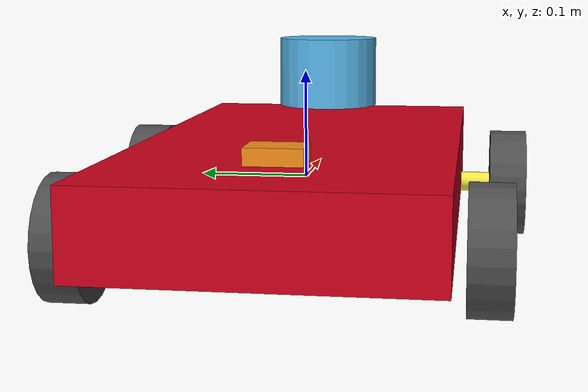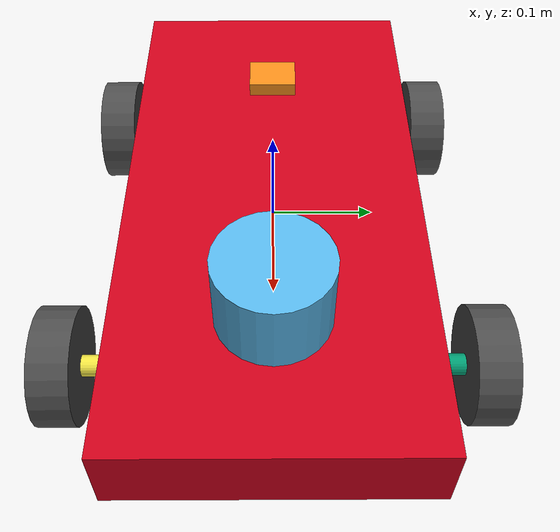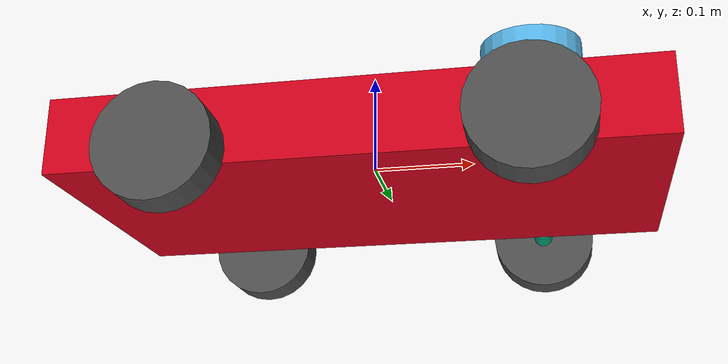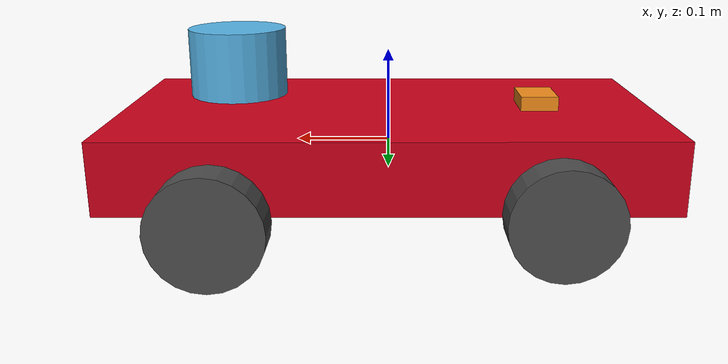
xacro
<?xml version="1.0"?>
<robot xmlns:xacro="http://www.ros.org/wiki/xacro" name="arc">

    <!-- Includes -->
    <xacro:include filename="$(find ars_description)/urdf/arc_properties.urdf.xacro" />
    <xacro:include filename="$(find ars_description)/urdf/arc.urdf.xacro"/>

    <!-- Generate Car -->
    <xacro:arc/>

</robot>

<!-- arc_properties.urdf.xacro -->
<robot xmlns:xacro="http://www.ros.org/wiki/xacro" name="arc">

    <xacro:property name="base_link_name" value="base_link"/>

    <xacro:property name="chassisHeight" value="0.075"/>
    <xacro:property name="chassisLength" value="0.570"/>
    <xacro:property name="chassisWidth" value="0.290"/>
    <xacro:property name="chassisMass" value="2.300"/>

    <xacro:property name="hingeMass" value="0.030"/>
    <xacro:property name="hingeRadius" value="0.010"/>
    <xacro:property name="hingeLength" value="0.030"/>
    <xacro:property name="hingeX" value="0.162"/>

    <xacro:property name="wheelWidth" value="0.037"/>
    <xacro:property name="wheelRadius" value="0.055"/>
    <xacro:property name="backWheelX" value="-0.162"/>
    <xacro:property name="wheelClearance" value="0.01"/>
    <xacro:property name="wheelHeight" value="0.008"/>
    <xacro:property name="wheelMass" value="0.08"/>

</robot>

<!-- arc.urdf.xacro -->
<robot name="arc" xmlns:xacro="http://www.ros.org/wiki/xacro">

    <xacro:include filename="$(find ars_description)/urdf/arc_utils.urdf.xacro" />
    <xacro:include filename="$(find ars_description)/urdf/arc_lidar.gazebo.xacro"/>
    <xacro:include filename="$(find ars_description)/urdf/arc_imu.gazebo.xacro"/>
    <xacro:property name="PI" value="3.1415926535897931"/>

    <!--    Model macros    -->
    <!-- Front Wheel -->
    <xacro:macro name="front_wheel" params="prefix X Y friction_coeff:=0.7 transmission_reduction:=1" >
        <joint name="${prefix}_FRONT_WHEEL_JOINT" type="continuous">
            <parent link="${prefix}_HINGE"/>
            <child link="${prefix}_FRONT_WHEEL"/>
            <origin xyz="0 0 ${Y}" rpy="0 0 0" />
            <axis xyz="0 0 1" rpy="0 0 0" />
            <dynamics damping="0.0" friction="0.0"/>
            <limit effort="100" velocity="200"/>
            <joint_properties damping="0.2" friction="0.2"/>
        </joint>

        <link name="${prefix}_FRONT_WHEEL">
            <collision>
                <origin xyz="0 0 0" rpy="0 0 0" />
                <geometry>
                    <cylinder length="${wheelWidth}" radius="${wheelRadius}"/>
                </geometry>
            </collision>
            <visual>
                <origin xyz="0 0 0" rpy="0 0 0" />
                <geometry>
                    <cylinder length="${wheelWidth}" radius="${wheelRadius}"/>
                </geometry>
            </visual>
            <inertial>
                <origin xyz="0 0 0" rpy="0 0 0" />
                <mass value="${wheelMass}"/>
                <xacro:cylinder_inertia m="${wheelMass}" r="${wheelRadius}" h="${wheelWidth}"/>
            </inertial>
        </link>

        <gazebo reference="${prefix}_FRONT_WHEEL">
            <mu1 value="${friction_coeff}"/>
            <mu2 value="${friction_coeff}"/>
            <fdir1 value="1 0 0"/>
            <kp>10000000.0</kp>
            <kd>1.0</kd>
            <minDepth>0.005</minDepth>
            <maxVel>100.0</maxVel>
            <material>Gazebo/DarkGrey</material>
        </gazebo>

        <transmission name="${prefix}_FRONT_WHEEL_TRANS" type="SimpleTransmission">
            <type>transmission_interface/SimpleTransmission</type>
            <joint name="${prefix}_FRONT_WHEEL_JOINT">
                <hardwareInterface>EffortJointInterface</hardwareInterface>
            </joint>
            <actuator name="${prefix}_FRONT_ACTUATOR">
                <hardwareInterface>EffortJointInterface</hardwareInterface>
                <mechanicalReduction>${transmission_reduction}</mechanicalReduction>
            </actuator>
        </transmission>

    </xacro:macro>

    <!-- Front Hinge -->
    <xacro:macro name="hinge" params="prefix X Y">
        <joint name="${prefix}_HINGE_JOINT" type="revolute">
            <parent link="${base_link_name}"/>
            <child link="${prefix}_HINGE"/>
            <origin xyz="${X} ${Y} ${wheelHeight - chassisHeight/2.0}" rpy="-${0.5*PI} 0.0 0.0"/>
            <axis xyz="0 -1 0" rpy="0 0 0"/>
            <dynamics damping="0.0" friction="0.0"/>
            <limit lower="-0.53" upper="0.53" effort="100" velocity="1"/>
        </joint>

        <link name="${prefix}_HINGE">
            <visual>
                <origin xyz="0.0 0.0 0.0" rpy="0.0 0.0 0.0"/>
                <geometry>
                    <cylinder radius="${hingeRadius}" length="${hingeLength}"/>
                </geometry>
            </visual>
            <inertial>
                <origin xyz="0.0 0.0 0.0" rpy="0.0 0.0 0.0"/>
                <mass value="${hingeMass}"/>
                <xacro:cylinder_inertia m="${hingeMass}" r="${hingeRadius}" h="${hingeLength}"/>
            </inertial>
        </link>

        <gazebo reference="${prefix}_WHEEL_HINGE">
            <mu1 value="0.0"/>
            <mu2 value="0.0"/>
            <kp>10000000.0</kp>
            <kd>1.0</kd>
            <fdir1 value="0 1 0"/>
            <material>Gazebo/DarkGrey</material>
        </gazebo>

        <transmission name="${prefix}_HINGE_TRANS">
            <type>transmission_interface/SimpleTransmission</type>
            <joint name="${prefix}_HINGE_JOINT">
                <hardwareInterface>EffortJointInterface</hardwareInterface>
            </joint>
            <actuator name="${prefix}_ACTUATOR">
                <hardwareInterface>EffortJointInterface</hardwareInterface>
                <mechanicalReduction>1</mechanicalReduction>
            </actuator>
        </transmission>

    </xacro:macro>

    <!-- Rear Wheel -->
    <xacro:macro name="rear_wheel" params="prefix X Y friction_coeff:=0.7 transmission_reduction:=1" >
        <joint name="${prefix}_REAR_WHEEL_JOINT" type="continuous">
            <parent link="${base_link_name}"/>
            <child link="${prefix}_REAR_WHEEL"/>
            <origin xyz="${X} ${Y} ${wheelHeight - chassisHeight/2.0}" rpy="${PI/2} 0 0" />
            <axis xyz="0 0 -1" rpy="0 0 0" />
            <dynamics damping="0.0" friction="0.0"/>
            <limit effort="100" velocity="200"/>
            <joint_properties damping="0.2" friction="0.2"/>
        </joint>

        <link name="${prefix}_REAR_WHEEL">
            <collision>
                <origin xyz="0 0 0" rpy="0 0 0" />
                <geometry>
                    <cylinder length="${wheelWidth}" radius="${wheelRadius}"/>
                </geometry>
            </collision>
            <visual>
                <origin xyz="0 0 0" rpy="0 0 0" />
                <geometry>
                    <cylinder length="${wheelWidth}" radius="${wheelRadius}"/>
                </geometry>
            </visual>
            <inertial>
                <origin xyz="0 0 0" rpy="0 0 0" />
                <mass value="${wheelMass}"/>
                <xacro:cylinder_inertia m="${wheelMass}" r="${wheelRadius}" h="${wheelWidth}"/>
            </inertial>
        </link>

        <gazebo reference="${prefix}_REAR_WHEEL">
            <mu1 value="${friction_coeff}"/>
            <mu2 value="${friction_coeff}"/>
            <fdir1 value="1 0 0"/>
            <kp>10000000.0</kp>
            <kd>1.0</kd>
            <minDepth>0.005</minDepth>
            <maxVel>100.0</maxVel>
            <material>Gazebo/DarkGrey</material>
        </gazebo>

        <transmission name="${prefix}_REAR_WHEEL_TRANS" type="SimpleTransmission">
            <type>transmission_interface/SimpleTransmission</type>
            <joint name="${prefix}_REAR_WHEEL_JOINT">
                <hardwareInterface>EffortJointInterface</hardwareInterface>
            </joint>
            <actuator name="${prefix}_REAR_ACTUATOR">
                <hardwareInterface>EffortJointInterface</hardwareInterface>
                <mechanicalReduction>${transmission_reduction}</mechanicalReduction>
            </actuator>
        </transmission>

    </xacro:macro>

    <!-- Chassis -->
    <xacro:macro name="chassis">

        <link name="${base_link_name}">
            <collision>
                <origin xyz="0 0 0" rpy="0 0 0"/>
                <geometry>
                    <box size="${chassisLength} ${chassisWidth} ${chassisHeight}"/>
                </geometry>
            </collision>
            <visual>
                <origin xyz="0 0 0" rpy="0 0 0"/>
                <geometry>
                    <box size="${chassisLength} ${chassisWidth} ${chassisHeight}"/>
                </geometry>
                <material name="base_material">
                    <color rgba="0.8 0.0 0.1 1.0"/>
                </material>
            </visual>
        </link>

        <gazebo reference="${base_link_name}">
            <material>Gazebo/Red</material>
        </gazebo>

        <!-- Fixed joint to add dummy inertia link -->
        <joint name="base_to_base_inertia" type="fixed">
            <parent link="${base_link_name}"/>
            <child link="base_inertia"/>
            <origin xyz="0 0 0" rpy="0 0 0"/>
        </joint>

        <!-- Dummy inertia link, because KDL cannot have inertia on the base link -->
        <link name="base_inertia">
            <inertial>
                <origin xyz="0 0 0" rpy="0 0 0"/>
                <mass value="${chassisMass}"/>
                <xacro:box_inertia m="${chassisMass}"
                            x="${chassisLength}"
                            y="${chassisWidth}"
                            z="${chassisHeight}"/>
            </inertial>
        </link>

    </xacro:macro>

    <xacro:macro name="arc">
        <xacro:chassis/>

        <xacro:hinge prefix="LEFT"
            X = "${hingeX}"
            Y = "${chassisWidth/2+hingeLength/2}"/>

        <xacro:hinge prefix="RIGHT"
            X = "${hingeX}"
            Y = "${-chassisWidth/2-hingeLength/2}"/>

        <xacro:front_wheel prefix="LEFT"
            X="0"
            Y="${hingeLength/2+wheelWidth/2}"
            friction_coeff="0.5" />

        <xacro:front_wheel prefix="RIGHT"
            X="0"
            Y="${-hingeLength/2-wheelWidth/2}"
            friction_coeff="0.5"/>

        <xacro:rear_wheel prefix="LEFT"
            X="${backWheelX}"
            Y="${chassisWidth/2+wheelClearance+wheelWidth/2}"
            friction_coeff="0.0" />

        <xacro:rear_wheel prefix="RIGHT"
            X="${backWheelX}"
            Y="${-chassisWidth/2-wheelClearance-wheelWidth/2}"
            friction_coeff="0.0" />

        <xacro:IMU base_link="${base_link_name}"/>
        <xacro:LIDAR base_link="${base_link_name}"/>

    </xacro:macro>
</robot>

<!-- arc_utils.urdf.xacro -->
<robot xmlns:xacro="http://www.ros.org/wiki/xacro">

    <!--        Inertia definitions         -->
    <xacro:macro name="cylinder_inertia" params="m r h">
        <inertia
            ixx="${m*(3*r*r+h*h)/12}"
            ixy="0"
            ixz="0"
            iyy="${m*(3*r*r+h*h)/12}"
            iyz="0"
            izz="${m*r*r/2}"
        />
    </xacro:macro>
    <xacro:macro name="box_inertia" params="m x y z">
        <inertia
            ixx="${m*(y*y+z*z)/12}"
            ixy="0"
            ixz="0"
            iyy="${m*(x*x+z*z)/12}"
            iyz="0"
            izz="${m*(x*x+z*z)/12}"
        />
    </xacro:macro>
    <xacro:macro name="sphere_inertia" params="m r">
        <inertia
            ixx="${2*m*r*r/5}"
            ixy="0"
            ixz="0"
            iyy="${2*m*r*r/5}"
            iyz="0"
            izz="${2*m*r*r/5}"
        />
    </xacro:macro>

    <!--        Materials       -->
    <material name="black">
        <color rgba="0 0 0 1"/>
    </material>
    <material name="dark_grey">
        <color rgba="${60/255} ${60/255} ${60/255} 1"/>
    </material>
    <material name="blue">
        <color rgba="0 0 ${200/255} 1"/>
    </material>
    <material name="green">
        <color rgba="0 ${200/255} 0 1"/>
    </material>
    <material name="grey">
        <color rgba="${50/255} ${50/255} ${50/255} 1"/>
    </material>
    <material name="orange">
        <color rgba="1 ${108/255} ${10/255} 1"/>
    </material>
    <material name="brown">
        <color rgba="${222/255} ${207/255} ${195/255} 1"/>
    </material>
    <material name="red">
        <color rgba="${200/255} 0 0 1"/>
    </material>
    <material name="white">
        <color rgba="1 1 1 1"/>
    </material>

  </robot>

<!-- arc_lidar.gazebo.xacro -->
<robot name="arc" xmlns:xacro="http://www.ros.org/wiki/xacro">
  <xacro:macro name="LIDAR" params="base_link">
    <xacro:property name="lidar_base_link"		value="${base_link}"/>
    <xacro:property name="lidar_origin_rpy"		value="0 0 0"/>
    <xacro:property name="lidar_origin_xyz"		value="${hingeX} 0 ${chassisHeight/2.0+0.05}"/>
    <xacro:property name="lidar_height"		value="0.0717"/>
    <xacro:property name="lidar_radius"		value="0.0516"/>
    <xacro:property name="lidar_mass"		value="0.15"/>

    <xacro:property name="lidar_update_rate"		value="400"/>
    <xacro:property name="lidar_link"  			value="lidar_link"/>
    <xacro:property name="lidar_topic" 			value="/scan"/>

    <joint name="lidar_joint" type="fixed">
      <origin xyz="${lidar_origin_xyz}" rpy="${lidar_origin_rpy}"/>
      <parent link="${lidar_base_link}"/>
      <child link="lidar_link"/>
    </joint>

    <link name="lidar_link">
      <inertial>
        <mass value="${lidar_mass}"/>
        <origin xyz="0 0 0"/>
        <xacro:cylinder_inertia m="${lidar_mass}" r="${lidar_radius}" h="${lidar_height}"/>
      </inertial>
      <visual>
        <geometry>
          <cylinder radius="${lidar_radius}" length="${lidar_height}"/>
        </geometry>
      </visual>
      <collision>
        <origin rpy="0 0 0" xyz="0 0 0"/>
        <geometry>
          <cylinder radius="${lidar_radius}" length="${lidar_height}"/>
        </geometry>
      </collision>
    </link>

    <gazebo reference="lidar_link">
      <sensor name='gpu_lidar' type='gpu_lidar'>
          <topic>${lidar_topic}</topic>
          <update_rate>${lidar_update_rate}</update_rate>
          <ignition_frame_id>arc/lidar_link</ignition_frame_id>
          <lidar>
              <scan>
                  <horizontal>
                      <samples>640</samples>
                      <resolution>1</resolution>
                      <min_angle>-1.396263</min_angle>
                      <max_angle>1.396263</max_angle>
                  </horizontal>
                <vertical>
                  <samples>1</samples>
                  <resolution>1</resolution>
                  <min_angle>0.0</min_angle>
                  <max_angle>0.0</max_angle>
                </vertical>
              </scan>
              <range>
                  <min>0.08</min>
                  <max>10</max>
                  <resolution>0.01</resolution>
              </range>
              <noise>
                  <type>gaussian</type>
                  <mean>0.0</mean>
                  <stddev>0.001</stddev>
              </noise>
          </lidar>
          <alwaysOn>1</alwaysOn>
          <visualize>true</visualize>
        </sensor>
      </gazebo>

      <gazebo reference="lidar_joint">
        <preserveFixedJoint>true</preserveFixedJoint>
      </gazebo>

  </xacro:macro>

</robot>

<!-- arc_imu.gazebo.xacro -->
<!-- This file contains plugins to simulate an Imu sensor attached to the robot. -->

<robot name="arc" xmlns:xacro="http://www.ros.org/wiki/xacro">
    <xacro:macro name="IMU" params="base_link">
        <!--                              Imu  Properties 				          	-->
        <xacro:property name="imu_base_link"		value="${base_link}"/>
        <xacro:property name="imu_origin_rpy"		value="0 0 0"/>
        <xacro:property name="imu_origin_xyz"		value="${backWheelX} 0 ${chassisHeight/2.0+0.005}"/>

        <xacro:property name="imu_update_rate"		value="400"/>
        <xacro:property name="imu_link"  			value="imu_link"/>
        <xacro:property name="imu_topic" 			value="/imu"/>
        <xacro:property name="imu_calibration_service_name" value="/imu/calibrate"/>
        <xacro:property name="acceleration_offset"          value="0.0 0.0 0.0"/>
        <xacro:property name="acceleration_drift"           value="0.0 0.0 0.0"/>
        <xacro:property name="acceleration_drift_frequency" value="0.0 0.0 0.0"/>
        <xacro:property name="acceleration_gaussian_noise" 	value="0.0 0.0 0.0"/>
        <xacro:property name="rate_offset" 			value="0.0 0.0 0.0"/>
        <xacro:property name="rate_drift" 			value="0.0 0.0 0.0"/>
        <xacro:property name="rate_drift_frequency"	 	value="0.0 0.0 0.0"/>
        <xacro:property name="rate_gaussian_noise" 		value="0.0 0.0 0.0"/>
        <xacro:property name="heading_offset" 		value="0.0"/>
        <xacro:property name="heading_drift" 		value="0.0"/>
        <xacro:property name="heading_drift_frequency" 	value="0.0"/>
        <xacro:property name="heading_gaussian_noise" 	value="0.0"/>

        <!-- Imu is fixed to the base link -->
        <joint name="imu_joint" type="fixed">
            <origin xyz="${imu_origin_xyz}" rpy="${imu_origin_rpy}"/>
            <parent link="${imu_base_link}"/>
            <child link="${imu_link}"/>
        </joint>

        <!-- Imu link -->
        <link name="${imu_link}">
            <inertial>
                <mass value="0.01"/>
                <origin rpy="0 0 0" xyz="0 0 0"/>
                <xacro:box_inertia m="0.1" x="0.04" y="0.05" z="0.02"/>
            </inertial>
            <visual>
                <origin rpy="0 0 0" xyz="0 0 0"/>
                <geometry>
                    <box size="0.04 0.05 0.02"/>
                </geometry>
            </visual>
            <collision>
                <origin rpy="0 0 0" xyz="0 0 0"/>
                <geometry>
                    <box size="0.04 0.05 0.02"/>
                </geometry>
            </collision>
        </link>

        <gazebo reference="imu_link">
            <sensor name="imu_sensor" type="imu">
                <always_on>1</always_on>
                <update_rate>${imu_update_rate}</update_rate>
                <ignition_frame_id>arc/imu_link</ignition_frame_id>
                <visualize>true</visualize>
                <topic>${imu_topic}</topic>
            </sensor>
        </gazebo>

        <gazebo reference="${imu_link}">
            <material>Gazebo/Orange</material>
        </gazebo>

        <gazebo reference="imu_joint">
            <preserveFixedJoint>true</preserveFixedJoint>
        </gazebo>

    </xacro:macro>
</robot>
